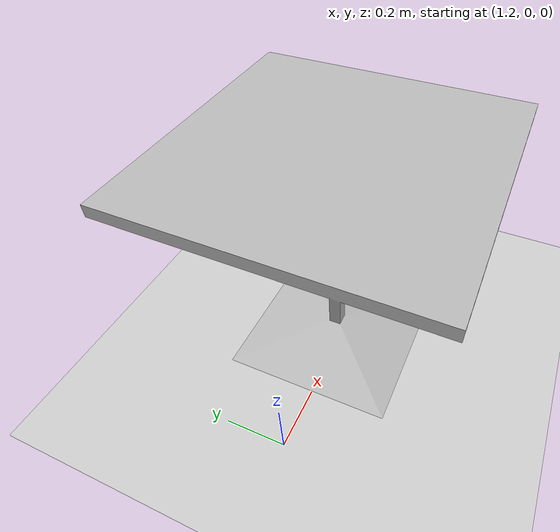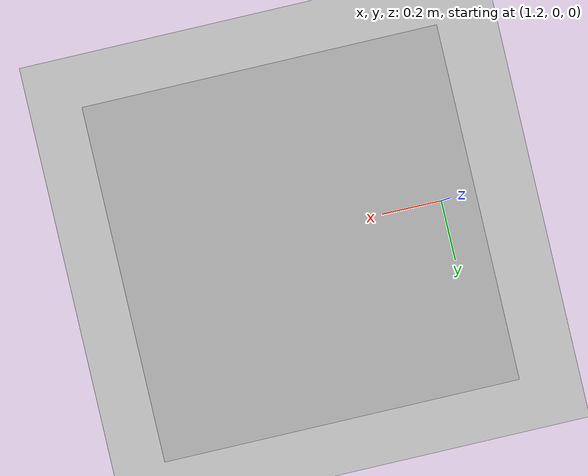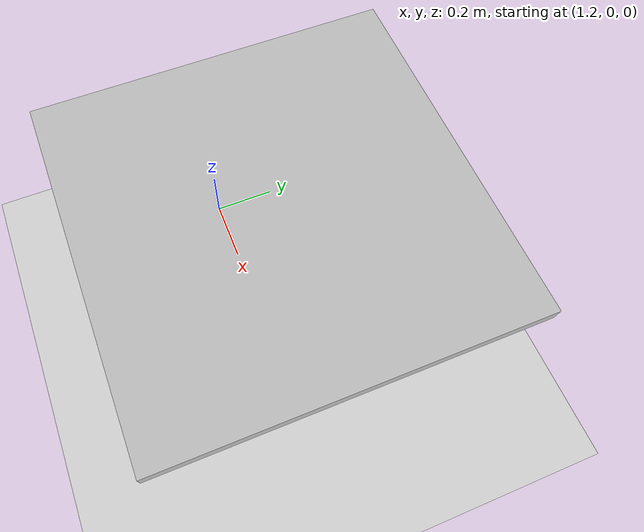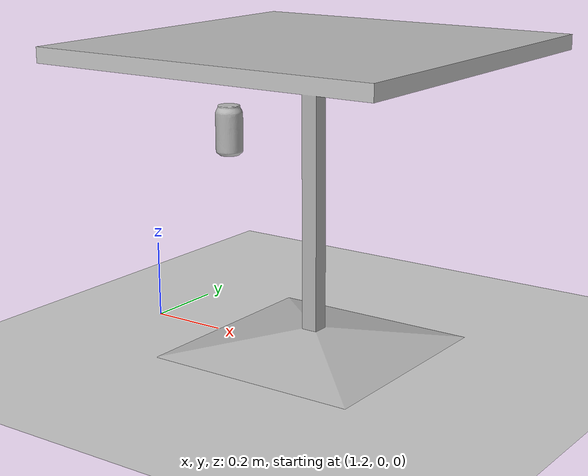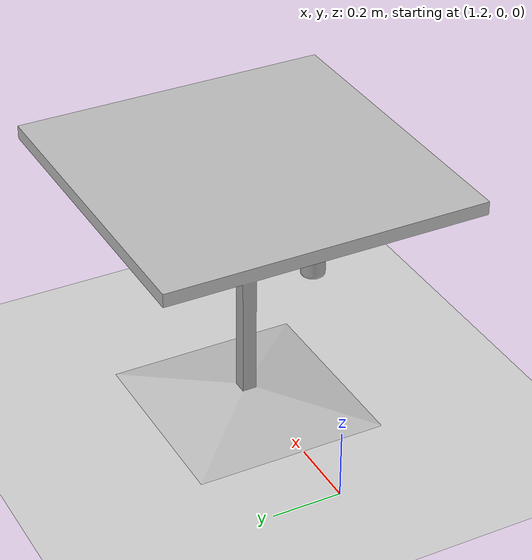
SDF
<sdf version="1.6">
 <world name="default">
  <light name="sun" type="directional">
   <pose>0 0 10 0 -0 0</pose>
   <diffuse>0.8 0.8 0.8 1</diffuse>
   <specular>0.1 0.1 0.1 1</specular>
   <attenuation>
    <range>1000</range>
    <constant>0.9</constant>
    <linear>0.01</linear>
    <quadratic>0.001</quadratic>
   </attenuation>
   <direction>-0.5 0.5 -1</direction>
  </light>
  <model name="ground_plane">
   <static>1</static>
   <link name="link">
    <collision name="collision">
     <geometry><plane><normal>0 0 1</normal><size>100 100</size></plane></geometry>
     <surface><friction><ode><mu>100</mu><mu2>50</mu2></ode></friction></surface>
    </collision>
    <visual name="visual">
     <cast_shadows>0</cast_shadows>
     <geometry><plane><normal>0 0 1</normal><size>100 100</size></plane></geometry>
     <material>
      <script><uri>file://media/materials/scripts/gazebo.material</uri><name>Gazebo/Grey</name></script>
     </material>
    </visual>
   </link>
  </model>
  <gravity>0 0 -9.8</gravity>
  <magnetic_field>6e-06 2.3e-05 -4.2e-05</magnetic_field>
  <atmosphere type="adiabatic"/>
  <physics name="default_physics" default="0" type="ode">
   <max_step_size>0.001</max_step_size>
   <real_time_factor>1</real_time_factor>
   <real_time_update_rate>1000</real_time_update_rate>
  </physics>
  <scene><ambient>0.4 0.4 0.4 1</ambient><background>0.7 0.7 0.7 1</background><shadows>1</shadows></scene>
  <spherical_coordinates>
   <surface_model>EARTH_WGS84</surface_model>
   <latitude_deg>0</latitude_deg>
   <longitude_deg>0</longitude_deg>
   <elevation>0</elevation>
   <heading_deg>0</heading_deg>
  </spherical_coordinates>
  <model name="cafe_table">
   <static>1</static>
   <link name="link">
    <collision name="surface">
     <pose>0 0 0.755 0 -0 0</pose>
     <geometry><box><size>0.913 0.913 0.04</size></box></geometry>
    </collision>
    <collision name="column">
     <pose>0 0 0.37 0 -0 0</pose>
     <geometry><box><size>0.042 0.042 0.74</size></box></geometry>
    </collision>
    <collision name="base">
     <pose>0 0 0.02 0 -0 0</pose>
     <geometry><box><size>0.56 0.56 0.04</size></box></geometry>
    </collision>
    <visual name="visual">
     <geometry><mesh><uri>model://cafe_table/meshes/cafe_table.dae</uri></mesh></geometry>
    </visual>
   </link>
   <pose>1.68272 0.031306 0 0 -0 0</pose>
  </model>
  <model name="coke_can">
   <link name="link">
    <inertial>
     <pose>-0.01 -0.012 0.15 0 -0 0</pose>
     <mass>0.39</mass>
     <inertia><ixx>0.00058</ixx><ixy>0</ixy><ixz>0</ixz><iyy>0.00058</iyy><iyz>0</iyz><izz>0.00019</izz></inertia>
    </inertial>
    <collision name="collision">
     <pose>0 0 -0.46 0 -0 0</pose>
     <geometry><mesh><uri>model://coke_can/meshes/coke_can.dae</uri></mesh></geometry>
     <surface>
      <friction><ode><mu>1</mu><mu2>1</mu2></ode></friction>
      <contact><ode><kp>1e+07</kp><kd>1</kd><min_depth>0.001</min_depth><max_vel>0.1</max_vel></ode></contact>
     </surface>
    </collision>
    <visual name="visual">
     <pose>0 0 -0.46 0 -0 0</pose>
     <geometry><mesh><uri>model://coke_can/meshes/coke_can.dae</uri></mesh></geometry>
    </visual>
   </link>
   <pose>1.51199 -0.069726 0.770383 -0.007157 -0.003732 0.002218</pose>
  </model>
 </world>
</sdf>
